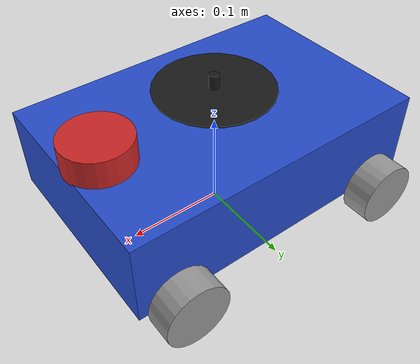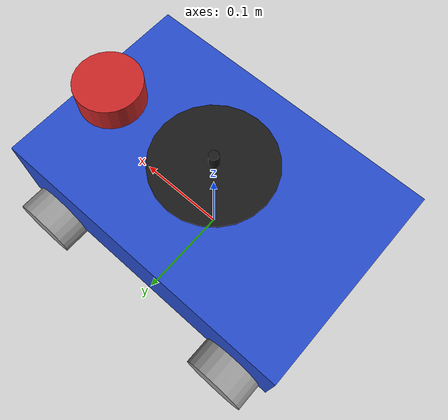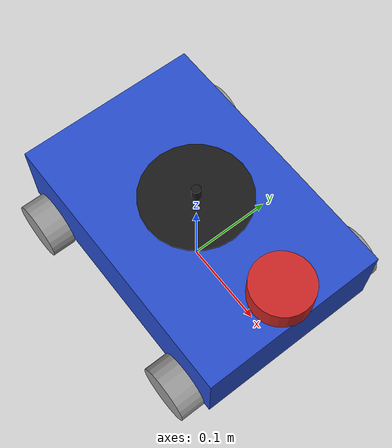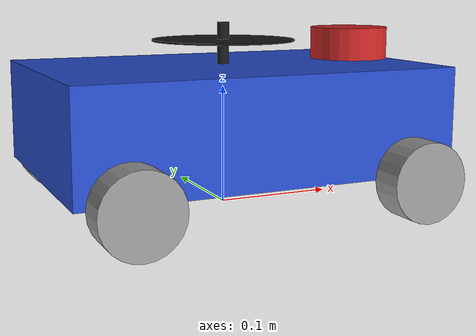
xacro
<?xml version="1.0"?>

<robot name="robitcubebot" xmlns:xacro="http://ros.org/wiki/xacro">

  <!-- Load Simulated or Real Hardware Interfaces -->
  <xacro:arg name="is_sim" default="true"/>

  <xacro:arg name="use_ros2_control" default="false"/>

  <!-- Include ros2_control Plugins -->
  <xacro:include filename="common_properties.xacro" />
  <xacro:include filename="robitcubebot_base.xacro" />

  <!-- Include Gazebo Parameters -->
  <!--xacro:include filename="gazebo_control_plugin.xacro" /-->

  <xacro:include filename="lidar.xacro"/>

  <xacro:if value="$(arg use_ros2_control)">
      <xacro:include filename="robitcubebot_ros2_control.xacro" />
      <!--xacro:include filename="robitcubebot_hardware_ros2_control.xacro" /-->
  </xacro:if>
  <xacro:unless value="$(arg use_ros2_control)">
      <xacro:include filename="gazebo_control_plugin.xacro" />
  </xacro:unless>

  <xacro:include filename="lift.xacro" />
  <xacro:include filename="lift_controller.xacro" />
  <!--xacro:include filename="imu.xacro" /-->

</robot>

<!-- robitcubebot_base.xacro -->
<robot xmlns:xacro="http://www.ros.org/wiki/xacro">

    <xacro:property name="base_length" value="0.317" />
    <xacro:property name="base_width" value="0.212" />
    <xacro:property name="base_height" value="0.0446" />
    <xacro:property name="upper_length" value="0.317" />
    <xacro:property name="upper_width" value="0.212" />
    <xacro:property name="upper_height" value="0.0423" />
    <xacro:property name="wheel_radius" value="0.0325" />
    <xacro:property name="robot_height" value="0.0869" />
    <xacro:property name="wheel_length" value="0.028" />
    <xacro:property name="to_wheel_center" value="0.07" />

    <link name="base_footprint" />

    <link name="base_link">
        <visual>
            <geometry>
                <box size="${base_length} ${base_width} ${robot_height}" />
            </geometry>
            <origin xyz="0 0 ${robot_height / 2.0}" rpy="0 0 0" />
          <material name="blue" />
        </visual>
        <collision>
            <geometry>
                <box size="${base_length} ${base_width} ${robot_height}" />
            </geometry>
            <origin xyz="0 0 ${robot_height / 2.0}" rpy="0 0 0" />
        </collision>
        <xacro:box_inertia m="5.0" l="${2*base_length}" w="${2*base_width}" h="${2*robot_height}"
                           xyz="0 0 ${robot_height / 2.0}" rpy="0 0 0" />
    </link>

    <xacro:macro name="wheel_link" params="prefix">
        <link name="${prefix}_wheel_link">
            <visual>
                <geometry>
                    <cylinder radius="${wheel_radius}" length="${wheel_length}" />
                </geometry>
                <origin xyz="0 0 0" rpy="${pi / 2.0} 0 0" />
                <material name="grey" />
            </visual>
            <collision>
                <geometry>
                    <sphere radius="${wheel_radius}"/>
                </geometry>
            </collision>
            <xacro:cylinder_inertia m="1.0" r="${2*wheel_radius}" h="${2*wheel_length}"
                                    xyz="0 0 0" rpy="${pi / 2.0} 0 0" />
        </link>
    </xacro:macro>

    <xacro:wheel_link prefix="front_right" />
    <xacro:wheel_link prefix="front_left" />
    <xacro:wheel_link prefix="back_right" />
    <xacro:wheel_link prefix="back_left" />

    <joint name="base_joint" type="fixed">
        <parent link="base_footprint" />
        <child link="base_link" />
        <origin xyz="0 0 ${wheel_radius}" rpy="0 0 0"/>
    </joint>

    <joint name="front_wheel_right_joint" type="continuous">
        <parent link="base_link" />
        <child link="front_right_wheel_link" />
        <origin xyz="${-base_length / 2.7} ${-(base_width + wheel_length) / 2.0} 0" rpy="0 0 0" />
        <axis xyz="0 1 0" />
    </joint>

    <joint name="front_wheel_left_joint" type="continuous">
        <parent link="base_link" />
        <child link="front_left_wheel_link" />
        <origin xyz="${-base_length / 2.7} ${(base_width + wheel_length) / 2.0} 0" rpy="0 0 0" />
        <axis xyz="0 1 0" />
    </joint>
    <joint name="back_wheel_right_joint" type="continuous">
        <parent link="base_link" />
        <child link="back_right_wheel_link" />
        <origin xyz="${base_length / 2.7} ${-(base_width + wheel_length) / 2.0} 0" rpy="0 0 0" />
        <axis xyz="0 1 0" />
    </joint>

    <joint name="back_wheel_left_joint" type="continuous">
        <parent link="base_link" />
        <child link="back_left_wheel_link" />
        <origin xyz="${base_length / 2.7} ${(base_width + wheel_length) / 2.0} 0" rpy="0 0 0" />
        <axis xyz="0 1 0" />
    </joint>

</robot>

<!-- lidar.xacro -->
<robot xmlns:xacro="http://www.ros.org/wiki/xacro" >

  <joint name="laser_joint" type="fixed">
        <parent link="base_link"/>
        <child link="laser_frame"/>
        <origin xyz="${base_length /2.5} 0.005 0.1" rpy="0 0 0"/>
    </joint>

    <link name="laser_frame">
        <visual>
            <geometry>
                <cylinder radius="0.034" length="0.03"/>
            </geometry>
        </visual>
        <collision>
            <geometry>
                <cylinder radius="0.034" length="0.03"/>
            </geometry>
        </collision>
        <xacro:cylinder_inertia m="1.0" r="${2*0.05}" h="${2*0.04}"
                                    xyz="0 0 0" rpy="${pi / 2.0} 0 0" />
    </link>
    <gazebo reference="laser_frame">
        <material>Gazebo/Red</material>

        <sensor name="laser" type="ray">
            <pose> 0 0 0 0 0 0 </pose>
            <visualize>true</visualize>
            <update_rate>10</update_rate>
            <ray>
                <scan>
                    <horizontal>
                        <samples>360</samples>
                        <min_angle>-3.14</min_angle>
                        <max_angle>3.14</max_angle>
                    </horizontal>
                </scan>
                <range>
                    <min>0.3</min>
                    <max>20</max>
                </range>
            </ray>
            <plugin name="laser_controller" filename="libgazebo_ros_ray_sensor.so">
                <ros>
                    <argument>~/out:=scan</argument>
                </ros>
                <output_type>sensor_msgs/LaserScan</output_type>
                <frame_name>laser_frame</frame_name>
            </plugin>
        </sensor>
    </gazebo>

</robot>

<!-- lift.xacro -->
<robot xmlns:xacro="http://www.ros.org/wiki/xacro">

  <xacro:property name="screw_diameter" value="0.008" />
  <xacro:property name="screw_length" value="0.10" />
  <xacro:property name="plate_radius" value="0.045" />
  <xacro:property name="screw_length" value="0.10" />

  <xacro:macro name="lifter_transmission" params="joint_name actuator_name">
    <transmission name="${joint_name}_transmission">
        <plugin>transmission_interface/SimpleTransmission</plugin>
        <actuator name="${actuator_name}" role="actuator1"/>
        <joint name="${joint_name}" role="joint1">
            <mechanical_reduction>1.0</mechanical_reduction>
        </joint>
    </transmission>
  </xacro:macro>

   <!-- Link for the platform mid -->
  <link name="link_platform_mid">
    <origin xyz="0 0 0.0" rpy="0 0 0"/>
    <visual>
      <geometry>
        <cylinder radius="0.005" length="0.04"/>
      </geometry>
      <material name="black">
        <color rgba="0.1 0.1 0.1 1" />
      </material>
    </visual>
    <collision>
      <geometry>
         <cylinder radius="0.01" length="0.04"/>
      </geometry>
    </collision>
    <inertial>
      <mass value="1"/>
      <inertia ixx="1.0" ixy="0.0" ixz="0.0"
               iyy="1.0" iyz="0.0"
               izz="1.0"/>
    </inertial>
  </link>

  <!-- Joint connecting upper link to platform mid -->
  <joint name="platform_joint" type="fixed">
    <parent link="base_link" />
    <child link="link_platform_mid" />
    <origin xyz="0.0 0 ${robot_height+0.015}" rpy="0 0 0"/>
  </joint>

  <!-- Link for the lift mechanism -->
  <link name="lift_link">
    <visual>
      <origin xyz="0 0  0.0" rpy="0 0 0"/>
      <geometry>
        <cylinder radius="0.06" length="0.0015"/>
      </geometry>
      <material name="black">
        <color rgba="0.1 0.1 0.1 1" />
      </material>
    </visual>
    <collision>
      <geometry>
        <cylinder radius="0.08" length="0.001"/>
      </geometry>
    </collision>
    <inertial>
      <mass value="1"/>
      <inertia ixx="1.0" ixy="0.0" ixz="0.0"
               iyy="1.0" iyz="0.0"
               izz="1.0"/>
    </inertial>
  </link>

</robot>

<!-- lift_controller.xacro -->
<robot xmlns:xacro="http://www.ros.org/wiki/xacro">
  <ros2_control name="RobotSystem" type="system">
      <!-- ros2_control Gazebo -->
      <hardware>
          <plugin>gazebo_ros2_control/GazeboSystem</plugin>
      </hardware>
      <joint name="lift_joint">
          <command_interface name="position">
          <param name="min">-05</param>
          <param name="max">1.5</param>
          </command_interface>
          <state_interface name="position"/>
      </joint>
  </ros2_control>

  <!-- Prismatic joint for lifting -->
  <joint name="lift_joint" type="prismatic">
    <origin xyz="0 0 0.03" rpy="0 0 0"/>
    <parent link="link_platform_mid" />
    <child link="lift_link" />
    <axis xyz="0 0 1" rpy="0 0 0"/>
    <limit effort="100.0" lower="-0.035" upper="-0.015" velocity="1.0"/>
    <dynamics damping="0.1" friction="0.1"/>
    <hardwareInterface>hardware_interface/VelocityJointInterface</hardwareInterface>
  </joint>

  <gazebo>
    <plugin filename="libgazebo_ros2_control.so" name="gazebo_ros2_control">
      <robot_param>robot_description</robot_param>
      <robot_param_node>robot_state_publisher</robot_param_node>
      <parameters>$(find robitcubebot_bringup)/config/lift_params.yaml</parameters>
    </plugin>
  </gazebo>

 <!-- Use the lifter transmission macro for lift_joint -->
 <lifter_transmission joint_name="lift_joint" actuator_name="lifter_motor"/>

</robot>
